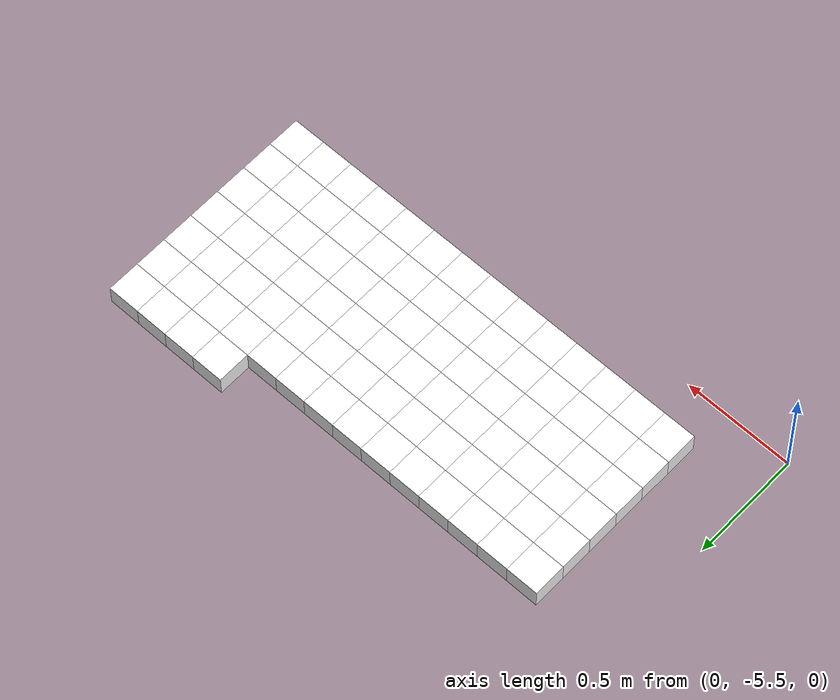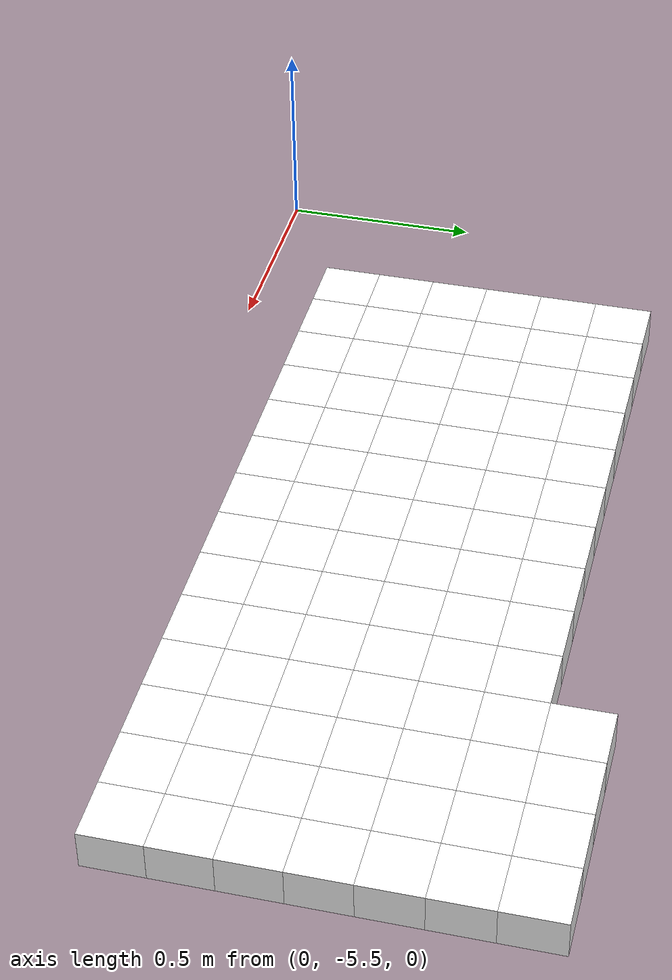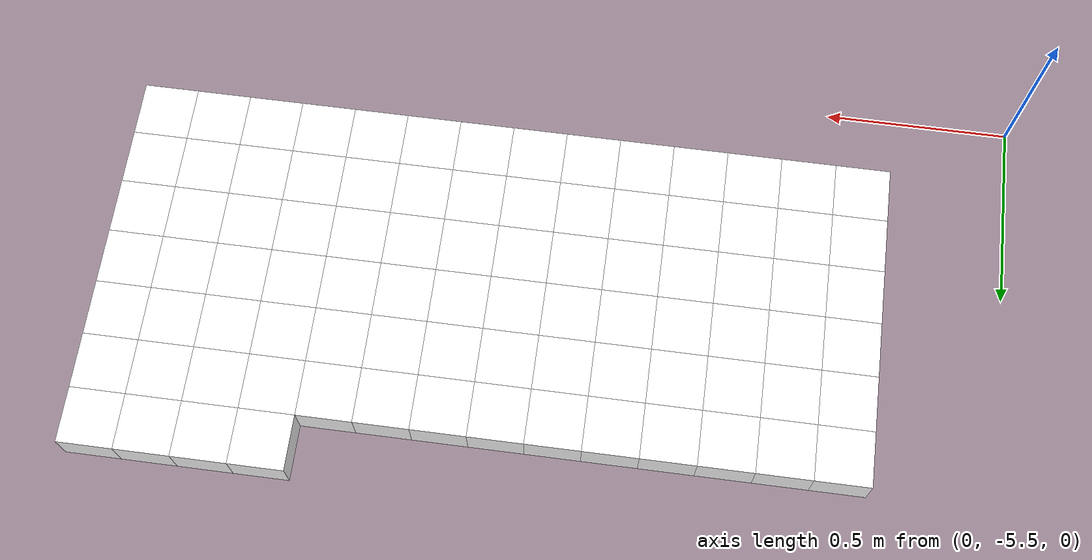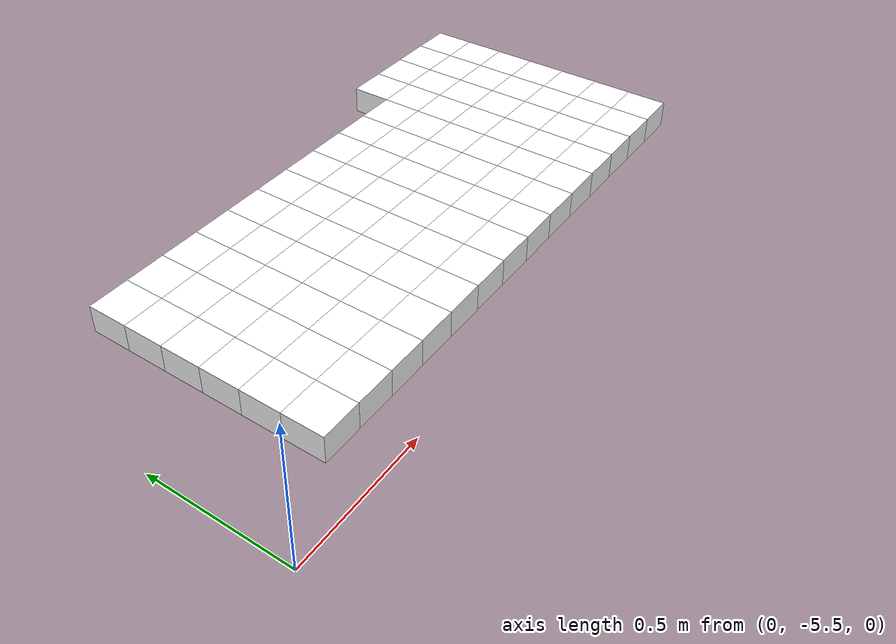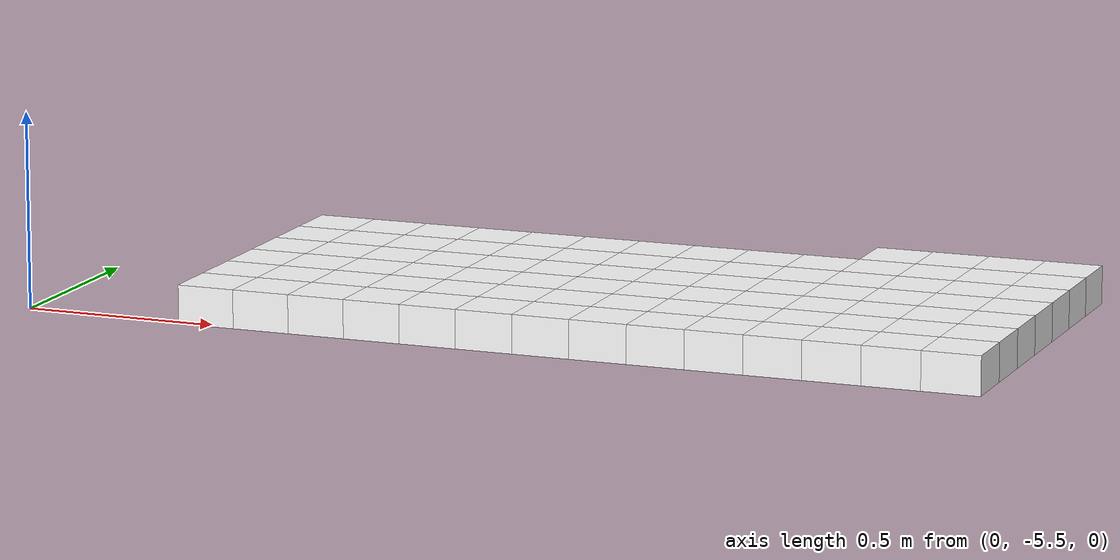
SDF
<sdf version="1.7">
 <world name="default">
  <include><uri>model://sun</uri></include>
  <model name="static_environment">
   <static>true</static>
   <link name="region_914">
    <pose>0.3995461905376687 -4.500213532733327 0.0 0.0 0.0 4.7123</pose>
    <collision name="region_914_collision">
     <geometry><box><size>0.15 0.15 0.1</size></box></geometry>
     <surface><friction><ode><mu>1.0</mu><mu2>1.0</mu2></ode></friction></surface>
    </collision>
    <visual name="region_914_visual">
     <geometry><box><size>0.15 0.15 0.1</size></box></geometry>
     <material><ambient>1.0 1.0 1.0 1.0</ambient><diffuse>1.0 1.0 1.0 1.0</diffuse></material>
    </visual>
   </link>
   <link name="region_915">
    <pose>0.3995328434799825 -4.650213532139515 0.0 0.0 0.0 4.7123</pose>
    <collision name="region_915_collision">
     <geometry><box><size>0.15 0.15 0.1</size></box></geometry>
     <surface><friction><ode><mu>1.0</mu><mu2>1.0</mu2></ode></friction></surface>
    </collision>
    <visual name="region_915_visual">
     <geometry><box><size>0.15 0.15 0.1</size></box></geometry>
     <material><ambient>1.0 1.0 1.0 1.0</ambient><diffuse>1.0 1.0 1.0 1.0</diffuse></material>
    </visual>
   </link>
   <link name="region_916">
    <pose>0.3995194964222968 -4.800213531545702 0.0 0.0 0.0 4.7123</pose>
    <collision name="region_916_collision">
     <geometry><box><size>0.15 0.15 0.1</size></box></geometry>
     <surface><friction><ode><mu>1.0</mu><mu2>1.0</mu2></ode></friction></surface>
    </collision>
    <visual name="region_916_visual">
     <geometry><box><size>0.15 0.15 0.1</size></box></geometry>
     <material><ambient>1.0 1.0 1.0 1.0</ambient><diffuse>1.0 1.0 1.0 1.0</diffuse></material>
    </visual>
   </link>
   <link name="region_917">
    <pose>0.39950614936461104 -4.950213530951889 0.0 0.0 0.0 4.7123</pose>
    <collision name="region_917_collision">
     <geometry><box><size>0.15 0.15 0.1</size></box></geometry>
     <surface><friction><ode><mu>1.0</mu><mu2>1.0</mu2></ode></friction></surface>
    </collision>
    <visual name="region_917_visual">
     <geometry><box><size>0.15 0.15 0.1</size></box></geometry>
     <material><ambient>1.0 1.0 1.0 1.0</ambient><diffuse>1.0 1.0 1.0 1.0</diffuse></material>
    </visual>
   </link>
   <link name="region_918">
    <pose>0.3994928023069253 -5.100213530358077 0.0 0.0 0.0 4.7123</pose>
    <collision name="region_918_collision">
     <geometry><box><size>0.15 0.15 0.1</size></box></geometry>
     <surface><friction><ode><mu>1.0</mu><mu2>1.0</mu2></ode></friction></surface>
    </collision>
    <visual name="region_918_visual">
     <geometry><box><size>0.15 0.15 0.1</size></box></geometry>
     <material><ambient>1.0 1.0 1.0 1.0</ambient><diffuse>1.0 1.0 1.0 1.0</diffuse></material>
    </visual>
   </link>
   <link name="region_919">
    <pose>0.3994794552492391 -5.250213529764263 0.0 0.0 0.0 4.7123</pose>
    <collision name="region_919_collision">
     <geometry><box><size>0.15 0.15 0.1</size></box></geometry>
     <surface><friction><ode><mu>1.0</mu><mu2>1.0</mu2></ode></friction></surface>
    </collision>
    <visual name="region_919_visual">
     <geometry><box><size>0.15 0.15 0.1</size></box></geometry>
     <material><ambient>1.0 1.0 1.0 1.0</ambient><diffuse>1.0 1.0 1.0 1.0</diffuse></material>
    </visual>
   </link>
   <link name="region_924">
    <pose>0.5495461899438556 -4.500226879791014 0.0 0.0 0.0 4.7123</pose>
    <collision name="region_924_collision">
     <geometry><box><size>0.15 0.15 0.1</size></box></geometry>
     <surface><friction><ode><mu>1.0</mu><mu2>1.0</mu2></ode></friction></surface>
    </collision>
    <visual name="region_924_visual">
     <geometry><box><size>0.15 0.15 0.1</size></box></geometry>
     <material><ambient>1.0 1.0 1.0 1.0</ambient><diffuse>1.0 1.0 1.0 1.0</diffuse></material>
    </visual>
   </link>
   <link name="region_925">
    <pose>0.5495328428861694 -4.6502268791972 0.0 0.0 0.0 4.7123</pose>
    <collision name="region_925_collision">
     <geometry><box><size>0.15 0.15 0.1</size></box></geometry>
     <surface><friction><ode><mu>1.0</mu><mu2>1.0</mu2></ode></friction></surface>
    </collision>
    <visual name="region_925_visual">
     <geometry><box><size>0.15 0.15 0.1</size></box></geometry>
     <material><ambient>1.0 1.0 1.0 1.0</ambient><diffuse>1.0 1.0 1.0 1.0</diffuse></material>
    </visual>
   </link>
   <link name="region_926">
    <pose>0.5495194958284837 -4.800226878603388 0.0 0.0 0.0 4.7123</pose>
    <collision name="region_926_collision">
     <geometry><box><size>0.15 0.15 0.1</size></box></geometry>
     <surface><friction><ode><mu>1.0</mu><mu2>1.0</mu2></ode></friction></surface>
    </collision>
    <visual name="region_926_visual">
     <geometry><box><size>0.15 0.15 0.1</size></box></geometry>
     <material><ambient>1.0 1.0 1.0 1.0</ambient><diffuse>1.0 1.0 1.0 1.0</diffuse></material>
    </visual>
   </link>
   <link name="region_927">
    <pose>0.549506148770798 -4.950226878009575 0.0 0.0 0.0 4.7123</pose>
    <collision name="region_927_collision">
     <geometry><box><size>0.15 0.15 0.1</size></box></geometry>
     <surface><friction><ode><mu>1.0</mu><mu2>1.0</mu2></ode></friction></surface>
    </collision>
    <visual name="region_927_visual">
     <geometry><box><size>0.15 0.15 0.1</size></box></geometry>
     <material><ambient>1.0 1.0 1.0 1.0</ambient><diffuse>1.0 1.0 1.0 1.0</diffuse></material>
    </visual>
   </link>
   <link name="region_928">
    <pose>0.5494928017131122 -5.100226877415762 0.0 0.0 0.0 4.7123</pose>
    <collision name="region_928_collision">
     <geometry><box><size>0.15 0.15 0.1</size></box></geometry>
     <surface><friction><ode><mu>1.0</mu><mu2>1.0</mu2></ode></friction></surface>
    </collision>
    <visual name="region_928_visual">
     <geometry><box><size>0.15 0.15 0.1</size></box></geometry>
     <material><ambient>1.0 1.0 1.0 1.0</ambient><diffuse>1.0 1.0 1.0 1.0</diffuse></material>
    </visual>
   </link>
   <link name="region_929">
    <pose>0.549479454655426 -5.25022687682195 0.0 0.0 0.0 4.7123</pose>
    <collision name="region_929_collision">
     <geometry><box><size>0.15 0.15 0.1</size></box></geometry>
     <surface><friction><ode><mu>1.0</mu><mu2>1.0</mu2></ode></friction></surface>
    </collision>
    <visual name="region_929_visual">
     <geometry><box><size>0.15 0.15 0.1</size></box></geometry>
     <material><ambient>1.0 1.0 1.0 1.0</ambient><diffuse>1.0 1.0 1.0 1.0</diffuse></material>
    </visual>
   </link>
   <link name="region_934">
    <pose>0.6995461893500425 -4.5002402268487 0.0 0.0 0.0 4.7123</pose>
    <collision name="region_934_collision">
     <geometry><box><size>0.15 0.15 0.1</size></box></geometry>
     <surface><friction><ode><mu>1.0</mu><mu2>1.0</mu2></ode></friction></surface>
    </collision>
    <visual name="region_934_visual">
     <geometry><box><size>0.15 0.15 0.1</size></box></geometry>
     <material><ambient>1.0 1.0 1.0 1.0</ambient><diffuse>1.0 1.0 1.0 1.0</diffuse></material>
    </visual>
   </link>
   <link name="region_935">
    <pose>0.6995328422923563 -4.650240226254886 0.0 0.0 0.0 4.7123</pose>
    <collision name="region_935_collision">
     <geometry><box><size>0.15 0.15 0.1</size></box></geometry>
     <surface><friction><ode><mu>1.0</mu><mu2>1.0</mu2></ode></friction></surface>
    </collision>
    <visual name="region_935_visual">
     <geometry><box><size>0.15 0.15 0.1</size></box></geometry>
     <material><ambient>1.0 1.0 1.0 1.0</ambient><diffuse>1.0 1.0 1.0 1.0</diffuse></material>
    </visual>
   </link>
   <link name="region_936">
    <pose>0.6995194952346706 -4.8002402256610734 0.0 0.0 0.0 4.7123</pose>
    <collision name="region_936_collision">
     <geometry><box><size>0.15 0.15 0.1</size></box></geometry>
     <surface><friction><ode><mu>1.0</mu><mu2>1.0</mu2></ode></friction></surface>
    </collision>
    <visual name="region_936_visual">
     <geometry><box><size>0.15 0.15 0.1</size></box></geometry>
     <material><ambient>1.0 1.0 1.0 1.0</ambient><diffuse>1.0 1.0 1.0 1.0</diffuse></material>
    </visual>
   </link>
   <link name="region_937">
    <pose>0.6995061481769849 -4.950240225067261 0.0 0.0 0.0 4.7123</pose>
    <collision name="region_937_collision">
     <geometry><box><size>0.15 0.15 0.1</size></box></geometry>
     <surface><friction><ode><mu>1.0</mu><mu2>1.0</mu2></ode></friction></surface>
    </collision>
    <visual name="region_937_visual">
     <geometry><box><size>0.15 0.15 0.1</size></box></geometry>
     <material><ambient>1.0 1.0 1.0 1.0</ambient><diffuse>1.0 1.0 1.0 1.0</diffuse></material>
    </visual>
   </link>
   <link name="region_938">
    <pose>0.6994928011192991 -5.100240224473448 0.0 0.0 0.0 4.7123</pose>
    <collision name="region_938_collision">
     <geometry><box><size>0.15 0.15 0.1</size></box></geometry>
     <surface><friction><ode><mu>1.0</mu><mu2>1.0</mu2></ode></friction></surface>
    </collision>
    <visual name="region_938_visual">
     <geometry><box><size>0.15 0.15 0.1</size></box></geometry>
     <material><ambient>1.0 1.0 1.0 1.0</ambient><diffuse>1.0 1.0 1.0 1.0</diffuse></material>
    </visual>
   </link>
   <link name="region_939">
    <pose>0.6994794540616129 -5.2502402238796355 0.0 0.0 0.0 4.7123</pose>
    <collision name="region_939_collision">
     <geometry><box><size>0.15 0.15 0.1</size></box></geometry>
     <surface><friction><ode><mu>1.0</mu><mu2>1.0</mu2></ode></friction></surface>
    </collision>
    <visual name="region_939_visual">
     <geometry><box><size>0.15 0.15 0.1</size></box></geometry>
     <material><ambient>1.0 1.0 1.0 1.0</ambient><diffuse>1.0 1.0 1.0 1.0</diffuse></material>
    </visual>
   </link>
   <link name="region_944">
    <pose>0.849546188756229 -4.500253573906385 0.0 0.0 0.0 4.7123</pose>
    <collision name="region_944_collision">
     <geometry><box><size>0.15 0.15 0.1</size></box></geometry>
     <surface><friction><ode><mu>1.0</mu><mu2>1.0</mu2></ode></friction></surface>
    </collision>
    <visual name="region_944_visual">
     <geometry><box><size>0.15 0.15 0.1</size></box></geometry>
     <material><ambient>1.0 1.0 1.0 1.0</ambient><diffuse>1.0 1.0 1.0 1.0</diffuse></material>
    </visual>
   </link>
   <link name="region_945">
    <pose>0.8495328416985428 -4.650253573312573 0.0 0.0 0.0 4.7123</pose>
    <collision name="region_945_collision">
     <geometry><box><size>0.15 0.15 0.1</size></box></geometry>
     <surface><friction><ode><mu>1.0</mu><mu2>1.0</mu2></ode></friction></surface>
    </collision>
    <visual name="region_945_visual">
     <geometry><box><size>0.15 0.15 0.1</size></box></geometry>
     <material><ambient>1.0 1.0 1.0 1.0</ambient><diffuse>1.0 1.0 1.0 1.0</diffuse></material>
    </visual>
   </link>
   <link name="region_946">
    <pose>0.8495194946408571 -4.800253572718759 0.0 0.0 0.0 4.7123</pose>
    <collision name="region_946_collision">
     <geometry><box><size>0.15 0.15 0.1</size></box></geometry>
     <surface><friction><ode><mu>1.0</mu><mu2>1.0</mu2></ode></friction></surface>
    </collision>
    <visual name="region_946_visual">
     <geometry><box><size>0.15 0.15 0.1</size></box></geometry>
     <material><ambient>1.0 1.0 1.0 1.0</ambient><diffuse>1.0 1.0 1.0 1.0</diffuse></material>
    </visual>
   </link>
   <link name="region_947">
    <pose>0.8495061475831713 -4.9502535721249465 0.0 0.0 0.0 4.7123</pose>
    <collision name="region_947_collision">
     <geometry><box><size>0.15 0.15 0.1</size></box></geometry>
     <surface><friction><ode><mu>1.0</mu><mu2>1.0</mu2></ode></friction></surface>
    </collision>
    <visual name="region_947_visual">
     <geometry><box><size>0.15 0.15 0.1</size></box></geometry>
     <material><ambient>1.0 1.0 1.0 1.0</ambient><diffuse>1.0 1.0 1.0 1.0</diffuse></material>
    </visual>
   </link>
   <link name="region_948">
    <pose>0.8494928005254856 -5.100253571531134 0.0 0.0 0.0 4.7123</pose>
    <collision name="region_948_collision">
     <geometry><box><size>0.15 0.15 0.1</size></box></geometry>
     <surface><friction><ode><mu>1.0</mu><mu2>1.0</mu2></ode></friction></surface>
    </collision>
    <visual name="region_948_visual">
     <geometry><box><size>0.15 0.15 0.1</size></box></geometry>
     <material><ambient>1.0 1.0 1.0 1.0</ambient><diffuse>1.0 1.0 1.0 1.0</diffuse></material>
    </visual>
   </link>
   <link name="region_949">
    <pose>0.8494794534677994 -5.250253570937321 0.0 0.0 0.0 4.7123</pose>
    <collision name="region_949_collision">
     <geometry><box><size>0.15 0.15 0.1</size></box></geometry>
     <surface><friction><ode><mu>1.0</mu><mu2>1.0</mu2></ode></friction></surface>
    </collision>
    <visual name="region_949_visual">
     <geometry><box><size>0.15 0.15 0.1</size></box></geometry>
     <material><ambient>1.0 1.0 1.0 1.0</ambient><diffuse>1.0 1.0 1.0 1.0</diffuse></material>
    </visual>
   </link>
   <link name="region_954">
    <pose>0.9995461881624159 -4.500266920964071 0.0 0.0 0.0 4.7123</pose>
    <collision name="region_954_collision">
     <geometry><box><size>0.15 0.15 0.1</size></box></geometry>
     <surface><friction><ode><mu>1.0</mu><mu2>1.0</mu2></ode></friction></surface>
    </collision>
    <visual name="region_954_visual">
     <geometry><box><size>0.15 0.15 0.1</size></box></geometry>
     <material><ambient>1.0 1.0 1.0 1.0</ambient><diffuse>1.0 1.0 1.0 1.0</diffuse></material>
    </visual>
   </link>
   <link name="region_955">
    <pose>0.9995328411047297 -4.6502669203702585 0.0 0.0 0.0 4.7123</pose>
    <collision name="region_955_collision">
     <geometry><box><size>0.15 0.15 0.1</size></box></geometry>
     <surface><friction><ode><mu>1.0</mu><mu2>1.0</mu2></ode></friction></surface>
    </collision>
    <visual name="region_955_visual">
     <geometry><box><size>0.15 0.15 0.1</size></box></geometry>
     <material><ambient>1.0 1.0 1.0 1.0</ambient><diffuse>1.0 1.0 1.0 1.0</diffuse></material>
    </visual>
   </link>
   <link name="region_956">
    <pose>0.999519494047044 -4.800266919776446 0.0 0.0 0.0 4.7123</pose>
    <collision name="region_956_collision">
     <geometry><box><size>0.15 0.15 0.1</size></box></geometry>
     <surface><friction><ode><mu>1.0</mu><mu2>1.0</mu2></ode></friction></surface>
    </collision>
    <visual name="region_956_visual">
     <geometry><box><size>0.15 0.15 0.1</size></box></geometry>
     <material><ambient>1.0 1.0 1.0 1.0</ambient><diffuse>1.0 1.0 1.0 1.0</diffuse></material>
    </visual>
   </link>
   <link name="region_957">
    <pose>0.9995061469893582 -4.950266919182632 0.0 0.0 0.0 4.7123</pose>
    <collision name="region_957_collision">
     <geometry><box><size>0.15 0.15 0.1</size></box></geometry>
     <surface><friction><ode><mu>1.0</mu><mu2>1.0</mu2></ode></friction></surface>
    </collision>
    <visual name="region_957_visual">
     <geometry><box><size>0.15 0.15 0.1</size></box></geometry>
     <material><ambient>1.0 1.0 1.0 1.0</ambient><diffuse>1.0 1.0 1.0 1.0</diffuse></material>
    </visual>
   </link>
   <link name="region_958">
    <pose>0.9994927999316725 -5.10026691858882 0.0 0.0 0.0 4.7123</pose>
    <collision name="region_958_collision">
     <geometry><box><size>0.15 0.15 0.1</size></box></geometry>
     <surface><friction><ode><mu>1.0</mu><mu2>1.0</mu2></ode></friction></surface>
    </collision>
    <visual name="region_958_visual">
     <geometry><box><size>0.15 0.15 0.1</size></box></geometry>
     <material><ambient>1.0 1.0 1.0 1.0</ambient><diffuse>1.0 1.0 1.0 1.0</diffuse></material>
    </visual>
   </link>
   <link name="region_959">
    <pose>0.9994794528739863 -5.250266917995007 0.0 0.0 0.0 4.7123</pose>
    <collision name="region_959_collision">
     <geometry><box><size>0.15 0.15 0.1</size></box></geometry>
     <surface><friction><ode><mu>1.0</mu><mu2>1.0</mu2></ode></friction></surface>
    </collision>
    <visual name="region_959_visual">
     <geometry><box><size>0.15 0.15 0.1</size></box></geometry>
     <material><ambient>1.0 1.0 1.0 1.0</ambient><diffuse>1.0 1.0 1.0 1.0</diffuse></material>
    </visual>
   </link>
   <link name="region_964">
    <pose>1.1495461875686024 -4.500280268021757 0.0 0.0 0.0 4.7123</pose>
    <collision name="region_964_collision">
     <geometry><box><size>0.15 0.15 0.1</size></box></geometry>
     <surface><friction><ode><mu>1.0</mu><mu2>1.0</mu2></ode></friction></surface>
    </collision>
    <visual name="region_964_visual">
     <geometry><box><size>0.15 0.15 0.1</size></box></geometry>
     <material><ambient>1.0 1.0 1.0 1.0</ambient><diffuse>1.0 1.0 1.0 1.0</diffuse></material>
    </visual>
   </link>
   <link name="region_965">
    <pose>1.1495328405109162 -4.650280267427944 0.0 0.0 0.0 4.7123</pose>
    <collision name="region_965_collision">
     <geometry><box><size>0.15 0.15 0.1</size></box></geometry>
     <surface><friction><ode><mu>1.0</mu><mu2>1.0</mu2></ode></friction></surface>
    </collision>
    <visual name="region_965_visual">
     <geometry><box><size>0.15 0.15 0.1</size></box></geometry>
     <material><ambient>1.0 1.0 1.0 1.0</ambient><diffuse>1.0 1.0 1.0 1.0</diffuse></material>
    </visual>
   </link>
   <link name="region_966">
    <pose>1.1495194934532305 -4.800280266834132 0.0 0.0 0.0 4.7123</pose>
    <collision name="region_966_collision">
     <geometry><box><size>0.15 0.15 0.1</size></box></geometry>
     <surface><friction><ode><mu>1.0</mu><mu2>1.0</mu2></ode></friction></surface>
    </collision>
    <visual name="region_966_visual">
     <geometry><box><size>0.15 0.15 0.1</size></box></geometry>
     <material><ambient>1.0 1.0 1.0 1.0</ambient><diffuse>1.0 1.0 1.0 1.0</diffuse></material>
    </visual>
   </link>
   <link name="region_967">
    <pose>1.1495061463955447 -4.950280266240319 0.0 0.0 0.0 4.7123</pose>
    <collision name="region_967_collision">
     <geometry><box><size>0.15 0.15 0.1</size></box></geometry>
     <surface><friction><ode><mu>1.0</mu><mu2>1.0</mu2></ode></friction></surface>
    </collision>
    <visual name="region_967_visual">
     <geometry><box><size>0.15 0.15 0.1</size></box></geometry>
     <material><ambient>1.0 1.0 1.0 1.0</ambient><diffuse>1.0 1.0 1.0 1.0</diffuse></material>
    </visual>
   </link>
   <link name="region_968">
    <pose>1.149492799337859 -5.100280265646505 0.0 0.0 0.0 4.7123</pose>
    <collision name="region_968_collision">
     <geometry><box><size>0.15 0.15 0.1</size></box></geometry>
     <surface><friction><ode><mu>1.0</mu><mu2>1.0</mu2></ode></friction></surface>
    </collision>
    <visual name="region_968_visual">
     <geometry><box><size>0.15 0.15 0.1</size></box></geometry>
     <material><ambient>1.0 1.0 1.0 1.0</ambient><diffuse>1.0 1.0 1.0 1.0</diffuse></material>
    </visual>
   </link>
   <link name="region_969">
    <pose>1.1494794522801728 -5.250280265052693 0.0 0.0 0.0 4.7123</pose>
    <collision name="region_969_collision">
     <geometry><box><size>0.15 0.15 0.1</size></box></geometry>
     <surface><friction><ode><mu>1.0</mu><mu2>1.0</mu2></ode></friction></surface>
    </collision>
    <visual name="region_969_visual">
     <geometry><box><size>0.15 0.15 0.1</size></box></geometry>
     <material><ambient>1.0 1.0 1.0 1.0</ambient><diffuse>1.0 1.0 1.0 1.0</diffuse></material>
    </visual>
   </link>
   <link name="region_974">
    <pose>1.2995461869747893 -4.500293615079443 0.0 0.0 0.0 4.7123</pose>
    <collision name="region_974_collision">
     <geometry><box><size>0.15 0.15 0.1</size></box></geometry>
     <surface><friction><ode><mu>1.0</mu><mu2>1.0</mu2></ode></friction></surface>
    </collision>
    <visual name="region_974_visual">
     <geometry><box><size>0.15 0.15 0.1</size></box></geometry>
     <material><ambient>1.0 1.0 1.0 1.0</ambient><diffuse>1.0 1.0 1.0 1.0</diffuse></material>
    </visual>
   </link>
   <link name="region_975">
    <pose>1.299532839917103 -4.65029361448563 0.0 0.0 0.0 4.7123</pose>
    <collision name="region_975_collision">
     <geometry><box><size>0.15 0.15 0.1</size></box></geometry>
     <surface><friction><ode><mu>1.0</mu><mu2>1.0</mu2></ode></friction></surface>
    </collision>
    <visual name="region_975_visual">
     <geometry><box><size>0.15 0.15 0.1</size></box></geometry>
     <material><ambient>1.0 1.0 1.0 1.0</ambient><diffuse>1.0 1.0 1.0 1.0</diffuse></material>
    </visual>
   </link>
   <link name="region_976">
    <pose>1.2995194928594174 -4.800293613891817 0.0 0.0 0.0 4.7123</pose>
    <collision name="region_976_collision">
     <geometry><box><size>0.15 0.15 0.1</size></box></geometry>
     <surface><friction><ode><mu>1.0</mu><mu2>1.0</mu2></ode></friction></surface>
    </collision>
    <visual name="region_976_visual">
     <geometry><box><size>0.15 0.15 0.1</size></box></geometry>
     <material><ambient>1.0 1.0 1.0 1.0</ambient><diffuse>1.0 1.0 1.0 1.0</diffuse></material>
    </visual>
   </link>
   <link name="region_977">
    <pose>1.2995061458017316 -4.950293613298005 0.0 0.0 0.0 4.7123</pose>
    <collision name="region_977_collision">
     <geometry><box><size>0.15 0.15 0.1</size></box></geometry>
     <surface><friction><ode><mu>1.0</mu><mu2>1.0</mu2></ode></friction></surface>
    </collision>
    <visual name="region_977_visual">
     <geometry><box><size>0.15 0.15 0.1</size></box></geometry>
     <material><ambient>1.0 1.0 1.0 1.0</ambient><diffuse>1.0 1.0 1.0 1.0</diffuse></material>
    </visual>
   </link>
   <link name="region_978">
    <pose>1.2994927987440459 -5.100293612704191 0.0 0.0 0.0 4.7123</pose>
    <collision name="region_978_collision">
     <geometry><box><size>0.15 0.15 0.1</size></box></geometry>
     <surface><friction><ode><mu>1.0</mu><mu2>1.0</mu2></ode></friction></surface>
    </collision>
    <visual name="region_978_visual">
     <geometry><box><size>0.15 0.15 0.1</size></box></geometry>
     <material><ambient>1.0 1.0 1.0 1.0</ambient><diffuse>1.0 1.0 1.0 1.0</diffuse></material>
    </visual>
   </link>
   <link name="region_979">
    <pose>1.2994794516863597 -5.2502936121103785 0.0 0.0 0.0 4.7123</pose>
    <collision name="region_979_collision">
     <geometry><box><size>0.15 0.15 0.1</size></box></geometry>
     <surface><friction><ode><mu>1.0</mu><mu2>1.0</mu2></ode></friction></surface>
    </collision>
    <visual name="region_979_visual">
     <geometry><box><size>0.15 0.15 0.1</size></box></geometry>
     <material><ambient>1.0 1.0 1.0 1.0</ambient><diffuse>1.0 1.0 1.0 1.0</diffuse></material>
    </visual>
   </link>
   <link name="region_984">
    <pose>1.4495461863809762 -4.500306962137128 0.0 0.0 0.0 4.7123</pose>
    <collision name="region_984_collision">
     <geometry><box><size>0.15 0.15 0.1</size></box></geometry>
     <surface><friction><ode><mu>1.0</mu><mu2>1.0</mu2></ode></friction></surface>
    </collision>
    <visual name="region_984_visual">
     <geometry><box><size>0.15 0.15 0.1</size></box></geometry>
     <material><ambient>1.0 1.0 1.0 1.0</ambient><diffuse>1.0 1.0 1.0 1.0</diffuse></material>
    </visual>
   </link>
   <link name="region_985">
    <pose>1.44953283932329 -4.650306961543316 0.0 0.0 0.0 4.7123</pose>
    <collision name="region_985_collision">
     <geometry><box><size>0.15 0.15 0.1</size></box></geometry>
     <surface><friction><ode><mu>1.0</mu><mu2>1.0</mu2></ode></friction></surface>
    </collision>
    <visual name="region_985_visual">
     <geometry><box><size>0.15 0.15 0.1</size></box></geometry>
     <material><ambient>1.0 1.0 1.0 1.0</ambient><diffuse>1.0 1.0 1.0 1.0</diffuse></material>
    </visual>
   </link>
   <link name="region_986">
    <pose>1.4495194922656043 -4.800306960949503 0.0 0.0 0.0 4.7123</pose>
    <collision name="region_986_collision">
     <geometry><box><size>0.15 0.15 0.1</size></box></geometry>
     <surface><friction><ode><mu>1.0</mu><mu2>1.0</mu2></ode></friction></surface>
    </collision>
    <visual name="region_986_visual">
     <geometry><box><size>0.15 0.15 0.1</size></box></geometry>
     <material><ambient>1.0 1.0 1.0 1.0</ambient><diffuse>1.0 1.0 1.0 1.0</diffuse></material>
    </visual>
   </link>
   <link name="region_987">
    <pose>1.4495061452079185 -4.95030696035569 0.0 0.0 0.0 4.7123</pose>
    <collision name="region_987_collision">
     <geometry><box><size>0.15 0.15 0.1</size></box></geometry>
     <surface><friction><ode><mu>1.0</mu><mu2>1.0</mu2></ode></friction></surface>
    </collision>
    <visual name="region_987_visual">
     <geometry><box><size>0.15 0.15 0.1</size></box></geometry>
     <material><ambient>1.0 1.0 1.0 1.0</ambient><diffuse>1.0 1.0 1.0 1.0</diffuse></material>
    </visual>
   </link>
   <link name="region_988">
    <pose>1.4494927981502328 -5.100306959761878 0.0 0.0 0.0 4.7123</pose>
    <collision name="region_988_collision">
     <geometry><box><size>0.15 0.15 0.1</size></box></geometry>
     <surface><friction><ode><mu>1.0</mu><mu2>1.0</mu2></ode></friction></surface>
    </collision>
    <visual name="region_988_visual">
     <geometry><box><size>0.15 0.15 0.1</size></box></geometry>
     <material><ambient>1.0 1.0 1.0 1.0</ambient><diffuse>1.0 1.0 1.0 1.0</diffuse></material>
    </visual>
   </link>
   <link name="region_989">
    <pose>1.4494794510925466 -5.250306959168064 0.0 0.0 0.0 4.7123</pose>
    <collision name="region_989_collision">
     <geometry><box><size>0.15 0.15 0.1</size></box></geometry>
     <surface><friction><ode><mu>1.0</mu><mu2>1.0</mu2></ode></friction></surface>
    </collision>
    <visual name="region_989_visual">
     <geometry><box><size>0.15 0.15 0.1</size></box></geometry>
     <material><ambient>1.0 1.0 1.0 1.0</ambient><diffuse>1.0 1.0 1.0 1.0</diffuse></material>
    </visual>
   </link>
   <link name="region_994">
    <pose>1.5995461857871627 -4.500320309194815 0.0 0.0 0.0 4.7123</pose>
    <collision name="region_994_collision">
     <geometry><box><size>0.15 0.15 0.1</size></box></geometry>
     <surface><friction><ode><mu>1.0</mu><mu2>1.0</mu2></ode></friction></surface>
    </collision>
    <visual name="region_994_visual">
     <geometry><box><size>0.15 0.15 0.1</size></box></geometry>
     <material><ambient>1.0 1.0 1.0 1.0</ambient><diffuse>1.0 1.0 1.0 1.0</diffuse></material>
    </visual>
   </link>
   <link name="region_995">
    <pose>1.5995328387294765 -4.650320308601001 0.0 0.0 0.0 4.7123</pose>
    <collision name="region_995_collision">
     <geometry><box><size>0.15 0.15 0.1</size></box></geometry>
     <surface><friction><ode><mu>1.0</mu><mu2>1.0</mu2></ode></friction></surface>
    </collision>
    <visual name="region_995_visual">
     <geometry><box><size>0.15 0.15 0.1</size></box></geometry>
     <material><ambient>1.0 1.0 1.0 1.0</ambient><diffuse>1.0 1.0 1.0 1.0</diffuse></material>
    </visual>
   </link>
   <link name="region_996">
    <pose>1.5995194916717907 -4.800320308007189 0.0 0.0 0.0 4.7123</pose>
    <collision name="region_996_collision">
     <geometry><box><size>0.15 0.15 0.1</size></box></geometry>
     <surface><friction><ode><mu>1.0</mu><mu2>1.0</mu2></ode></friction></surface>
    </collision>
    <visual name="region_996_visual">
     <geometry><box><size>0.15 0.15 0.1</size></box></geometry>
     <material><ambient>1.0 1.0 1.0 1.0</ambient><diffuse>1.0 1.0 1.0 1.0</diffuse></material>
    </visual>
   </link>
   <link name="region_997">
    <pose>1.599506144614105 -4.950320307413376 0.0 0.0 0.0 4.7123</pose>
    <collision name="region_997_collision">
     <geometry><box><size>0.15 0.15 0.1</size></box></geometry>
     <surface><friction><ode><mu>1.0</mu><mu2>1.0</mu2></ode></friction></surface>
    </collision>
    <visual name="region_997_visual">
     <geometry><box><size>0.15 0.15 0.1</size></box></geometry>
     <material><ambient>1.0 1.0 1.0 1.0</ambient><diffuse>1.0 1.0 1.0 1.0</diffuse></material>
    </visual>
   </link>
   <link name="region_998">
    <pose>1.5994927975564193 -5.1003203068195635 0.0 0.0 0.0 4.7123</pose>
    <collision name="region_998_collision">
     <geometry><box><size>0.15 0.15 0.1</size></box></geometry>
     <surface><friction><ode><mu>1.0</mu><mu2>1.0</mu2></ode></friction></surface>
    </collision>
    <visual name="region_998_visual">
     <geometry><box><size>0.15 0.15 0.1</size></box></geometry>
     <material><ambient>1.0 1.0 1.0 1.0</ambient><diffuse>1.0 1.0 1.0 1.0</diffuse></material>
    </visual>
   </link>
   <link name="region_999">
    <pose>1.599479450498733 -5.250320306225751 0.0 0.0 0.0 4.7123</pose>
    <collision name="region_999_collision">
     <geometry><box><size>0.15 0.15 0.1</size></box></geometry>
     <surface><friction><ode><mu>1.0</mu><mu2>1.0</mu2></ode></friction></surface>
    </collision>
    <visual name="region_999_visual">
     <geometry><box><size>0.15 0.15 0.1</size></box></geometry>
     <material><ambient>1.0 1.0 1.0 1.0</ambient><diffuse>1.0 1.0 1.0 1.0</diffuse></material>
    </visual>
   </link>
   <link name="region_1004">
    <pose>1.7495461851933496 -4.500333656252501 0.0 0.0 0.0 4.7123</pose>
    <collision name="region_1004_collision">
     <geometry><box><size>0.15 0.15 0.1</size></box></geometry>
     <surface><friction><ode><mu>1.0</mu><mu2>1.0</mu2></ode></friction></surface>
    </collision>
    <visual name="region_1004_visual">
     <geometry><box><size>0.15 0.15 0.1</size></box></geometry>
     <material><ambient>1.0 1.0 1.0 1.0</ambient><diffuse>1.0 1.0 1.0 1.0</diffuse></material>
    </visual>
   </link>
   <link name="region_1005">
    <pose>1.7495328381356634 -4.650333655658688 0.0 0.0 0.0 4.7123</pose>
    <collision name="region_1005_collision">
     <geometry><box><size>0.15 0.15 0.1</size></box></geometry>
     <surface><friction><ode><mu>1.0</mu><mu2>1.0</mu2></ode></friction></surface>
    </collision>
    <visual name="region_1005_visual">
     <geometry><box><size>0.15 0.15 0.1</size></box></geometry>
     <material><ambient>1.0 1.0 1.0 1.0</ambient><diffuse>1.0 1.0 1.0 1.0</diffuse></material>
    </visual>
   </link>
   <link name="region_1006">
    <pose>1.7495194910779777 -4.8003336550648745 0.0 0.0 0.0 4.7123</pose>
    <collision name="region_1006_collision">
     <geometry><box><size>0.15 0.15 0.1</size></box></geometry>
     <surface><friction><ode><mu>1.0</mu><mu2>1.0</mu2></ode></friction></surface>
    </collision>
    <visual name="region_1006_visual">
     <geometry><box><size>0.15 0.15 0.1</size></box></geometry>
     <material><ambient>1.0 1.0 1.0 1.0</ambient><diffuse>1.0 1.0 1.0 1.0</diffuse></material>
    </visual>
   </link>
   <link name="region_1007">
    <pose>1.749506144020292 -4.950333654471062 0.0 0.0 0.0 4.7123</pose>
    <collision name="region_1007_collision">
     <geometry><box><size>0.15 0.15 0.1</size></box></geometry>
     <surface><friction><ode><mu>1.0</mu><mu2>1.0</mu2></ode></friction></surface>
    </collision>
    <visual name="region_1007_visual">
     <geometry><box><size>0.15 0.15 0.1</size></box></geometry>
     <material><ambient>1.0 1.0 1.0 1.0</ambient><diffuse>1.0 1.0 1.0 1.0</diffuse></material>
    </visual>
   </link>
   <link name="region_1008">
    <pose>1.7494927969626062 -5.100333653877249 0.0 0.0 0.0 4.7123</pose>
    <collision name="region_1008_collision">
     <geometry><box><size>0.15 0.15 0.1</size></box></geometry>
     <surface><friction><ode><mu>1.0</mu><mu2>1.0</mu2></ode></friction></surface>
    </collision>
    <visual name="region_1008_visual">
     <geometry><box><size>0.15 0.15 0.1</size></box></geometry>
     <material><ambient>1.0 1.0 1.0 1.0</ambient><diffuse>1.0 1.0 1.0 1.0</diffuse></material>
    </visual>
   </link>
   <link name="region_1009">
    <pose>1.74947944990492 -5.250333653283437 0.0 0.0 0.0 4.7123</pose>
    <collision name="region_1009_collision">
     <geometry><box><size>0.15 0.15 0.1</size></box></geometry>
     <surface><friction><ode><mu>1.0</mu><mu2>1.0</mu2></ode></friction></surface>
    </collision>
    <visual name="region_1009_visual">
     <geometry><box><size>0.15 0.15 0.1</size></box></geometry>
     <material><ambient>1.0 1.0 1.0 1.0</ambient><diffuse>1.0 1.0 1.0 1.0</diffuse></material>
    </visual>
   </link>
   <link name="region_1013">
    <pose>1.8995595316572218 -4.350347003903999 0.0 0.0 0.0 4.7123</pose>
    <collision name="region_1013_collision">
     <geometry><box><size>0.15 0.15 0.1</size></box></geometry>
     <surface><friction><ode><mu>1.0</mu><mu2>1.0</mu2></ode></friction></surface>
    </collision>
    <visual name="region_1013_visual">
     <geometry><box><size>0.15 0.15 0.1</size></box></geometry>
     <material><ambient>1.0 1.0 1.0 1.0</ambient><diffuse>1.0 1.0 1.0 1.0</diffuse></material>
    </visual>
   </link>
   <link name="region_1014">
    <pose>1.899546184599536 -4.5003470033101864 0.0 0.0 0.0 4.7123</pose>
    <collision name="region_1014_collision">
     <geometry><box><size>0.15 0.15 0.1</size></box></geometry>
     <surface><friction><ode><mu>1.0</mu><mu2>1.0</mu2></ode></friction></surface>
    </collision>
    <visual name="region_1014_visual">
     <geometry><box><size>0.15 0.15 0.1</size></box></geometry>
     <material><ambient>1.0 1.0 1.0 1.0</ambient><diffuse>1.0 1.0 1.0 1.0</diffuse></material>
    </visual>
   </link>
   <link name="region_1015">
    <pose>1.8995328375418499 -4.650347002716374 0.0 0.0 0.0 4.7123</pose>
    <collision name="region_1015_collision">
     <geometry><box><size>0.15 0.15 0.1</size></box></geometry>
     <surface><friction><ode><mu>1.0</mu><mu2>1.0</mu2></ode></friction></surface>
    </collision>
    <visual name="region_1015_visual">
     <geometry><box><size>0.15 0.15 0.1</size></box></geometry>
     <material><ambient>1.0 1.0 1.0 1.0</ambient><diffuse>1.0 1.0 1.0 1.0</diffuse></material>
    </visual>
   </link>
   <link name="region_1016">
    <pose>1.8995194904841641 -4.800347002122561 0.0 0.0 0.0 4.7123</pose>
    <collision name="region_1016_collision">
     <geometry><box><size>0.15 0.15 0.1</size></box></geometry>
     <surface><friction><ode><mu>1.0</mu><mu2>1.0</mu2></ode></friction></surface>
    </collision>
    <visual name="region_1016_visual">
     <geometry><box><size>0.15 0.15 0.1</size></box></geometry>
     <material><ambient>1.0 1.0 1.0 1.0</ambient><diffuse>1.0 1.0 1.0 1.0</diffuse></material>
    </visual>
   </link>
   <link name="region_1017">
    <pose>1.8995061434264784 -4.950347001528748 0.0 0.0 0.0 4.7123</pose>
    <collision name="region_1017_collision">
     <geometry><box><size>0.15 0.15 0.1</size></box></geometry>
     <surface><friction><ode><mu>1.0</mu><mu2>1.0</mu2></ode></friction></surface>
    </collision>
    <visual name="region_1017_visual">
     <geometry><box><size>0.15 0.15 0.1</size></box></geometry>
     <material><ambient>1.0 1.0 1.0 1.0</ambient><diffuse>1.0 1.0 1.0 1.0</diffuse></material>
    </visual>
   </link>
   <link name="region_1018">
    <pose>1.8994927963687926 -5.100347000934935 0.0 0.0 0.0 4.7123</pose>
    <collision name="region_1018_collision">
     <geometry><box><size>0.15 0.15 0.1</size></box></geometry>
     <surface><friction><ode><mu>1.0</mu><mu2>1.0</mu2></ode></friction></surface>
    </collision>
    <visual name="region_1018_visual">
     <geometry><box><size>0.15 0.15 0.1</size></box></geometry>
     <material><ambient>1.0 1.0 1.0 1.0</ambient><diffuse>1.0 1.0 1.0 1.0</diffuse></material>
    </visual>
   </link>
   <link name="region_1019">
    <pose>1.8994794493111065 -5.250347000341122 0.0 0.0 0.0 4.7123</pose>
    <collision name="region_1019_collision">
     <geometry><box><size>0.15 0.15 0.1</size></box></geometry>
     <surface><friction><ode><mu>1.0</mu><mu2>1.0</mu2></ode></friction></surface>
    </collision>
    <visual name="region_1019_visual">
     <geometry><box><size>0.15 0.15 0.1</size></box></geometry>
     <material><ambient>1.0 1.0 1.0 1.0</ambient><diffuse>1.0 1.0 1.0 1.0</diffuse></material>
    </visual>
   </link>
   <link name="region_1023">
    <pose>2.0495595310634087 -4.350360350961685 0.0 0.0 0.0 4.7123</pose>
    <collision name="region_1023_collision">
     <geometry><box><size>0.15 0.15 0.1</size></box></geometry>
     <surface><friction><ode><mu>1.0</mu><mu2>1.0</mu2></ode></friction></surface>
    </collision>
    <visual name="region_1023_visual">
     <geometry><box><size>0.15 0.15 0.1</size></box></geometry>
     <material><ambient>1.0 1.0 1.0 1.0</ambient><diffuse>1.0 1.0 1.0 1.0</diffuse></material>
    </visual>
   </link>
   <link name="region_1024">
    <pose>2.049546184005723 -4.500360350367872 0.0 0.0 0.0 4.7123</pose>
    <collision name="region_1024_collision">
     <geometry><box><size>0.15 0.15 0.1</size></box></geometry>
     <surface><friction><ode><mu>1.0</mu><mu2>1.0</mu2></ode></friction></surface>
    </collision>
    <visual name="region_1024_visual">
     <geometry><box><size>0.15 0.15 0.1</size></box></geometry>
     <material><ambient>1.0 1.0 1.0 1.0</ambient><diffuse>1.0 1.0 1.0 1.0</diffuse></material>
    </visual>
   </link>
   <link name="region_1025">
    <pose>2.0495328369480372 -4.6503603497740595 0.0 0.0 0.0 4.7123</pose>
    <collision name="region_1025_collision">
     <geometry><box><size>0.15 0.15 0.1</size></box></geometry>
     <surface><friction><ode><mu>1.0</mu><mu2>1.0</mu2></ode></friction></surface>
    </collision>
    <visual name="region_1025_visual">
     <geometry><box><size>0.15 0.15 0.1</size></box></geometry>
     <material><ambient>1.0 1.0 1.0 1.0</ambient><diffuse>1.0 1.0 1.0 1.0</diffuse></material>
    </visual>
   </link>
   <link name="region_1026">
    <pose>2.0495194898903515 -4.800360349180247 0.0 0.0 0.0 4.7123</pose>
    <collision name="region_1026_collision">
     <geometry><box><size>0.15 0.15 0.1</size></box></geometry>
     <surface><friction><ode><mu>1.0</mu><mu2>1.0</mu2></ode></friction></surface>
    </collision>
    <visual name="region_1026_visual">
     <geometry><box><size>0.15 0.15 0.1</size></box></geometry>
     <material><ambient>1.0 1.0 1.0 1.0</ambient><diffuse>1.0 1.0 1.0 1.0</diffuse></material>
    </visual>
   </link>
   <link name="region_1027">
    <pose>2.049506142832665 -4.950360348586433 0.0 0.0 0.0 4.7123</pose>
    <collision name="region_1027_collision">
     <geometry><box><size>0.15 0.15 0.1</size></box></geometry>
     <surface><friction><ode><mu>1.0</mu><mu2>1.0</mu2></ode></friction></surface>
    </collision>
    <visual name="region_1027_visual">
     <geometry><box><size>0.15 0.15 0.1</size></box></geometry>
     <material><ambient>1.0 1.0 1.0 1.0</ambient><diffuse>1.0 1.0 1.0 1.0</diffuse></material>
    </visual>
   </link>
   <link name="region_1028">
    <pose>2.049492795774979 -5.100360347992621 0.0 0.0 0.0 4.7123</pose>
    <collision name="region_1028_collision">
     <geometry><box><size>0.15 0.15 0.1</size></box></geometry>
     <surface><friction><ode><mu>1.0</mu><mu2>1.0</mu2></ode></friction></surface>
    </collision>
    <visual name="region_1028_visual">
     <geometry><box><size>0.15 0.15 0.1</size></box></geometry>
     <material><ambient>1.0 1.0 1.0 1.0</ambient><diffuse>1.0 1.0 1.0 1.0</diffuse></material>
    </visual>
   </link>
   <link name="region_1029">
    <pose>2.0494794487172934 -5.250360347398808 0.0 0.0 0.0 4.7123</pose>
    <collision name="region_1029_collision">
     <geometry><box><size>0.15 0.15 0.1</size></box></geometry>
     <surface><friction><ode><mu>1.0</mu><mu2>1.0</mu2></ode></friction></surface>
    </collision>
    <visual name="region_1029_visual">
     <geometry><box><size>0.15 0.15 0.1</size></box></geometry>
     <material><ambient>1.0 1.0 1.0 1.0</ambient><diffuse>1.0 1.0 1.0 1.0</diffuse></material>
    </visual>
   </link>
   <link name="region_1033">
    <pose>2.199559530469596 -4.350373698019371 0.0 0.0 0.0 4.7123</pose>
    <collision name="region_1033_collision">
     <geometry><box><size>0.15 0.15 0.1</size></box></geometry>
     <surface><friction><ode><mu>1.0</mu><mu2>1.0</mu2></ode></friction></surface>
    </collision>
    <visual name="region_1033_visual">
     <geometry><box><size>0.15 0.15 0.1</size></box></geometry>
     <material><ambient>1.0 1.0 1.0 1.0</ambient><diffuse>1.0 1.0 1.0 1.0</diffuse></material>
    </visual>
   </link>
   <link name="region_1034">
    <pose>2.1995461834119103 -4.500373697425558 0.0 0.0 0.0 4.7123</pose>
    <collision name="region_1034_collision">
     <geometry><box><size>0.15 0.15 0.1</size></box></geometry>
     <surface><friction><ode><mu>1.0</mu><mu2>1.0</mu2></ode></friction></surface>
    </collision>
    <visual name="region_1034_visual">
     <geometry><box><size>0.15 0.15 0.1</size></box></geometry>
     <material><ambient>1.0 1.0 1.0 1.0</ambient><diffuse>1.0 1.0 1.0 1.0</diffuse></material>
    </visual>
   </link>
   <link name="region_1035">
    <pose>2.1995328363542246 -4.650373696831745 0.0 0.0 0.0 4.7123</pose>
    <collision name="region_1035_collision">
     <geometry><box><size>0.15 0.15 0.1</size></box></geometry>
     <surface><friction><ode><mu>1.0</mu><mu2>1.0</mu2></ode></friction></surface>
    </collision>
    <visual name="region_1035_visual">
     <geometry><box><size>0.15 0.15 0.1</size></box></geometry>
     <material><ambient>1.0 1.0 1.0 1.0</ambient><diffuse>1.0 1.0 1.0 1.0</diffuse></material>
    </visual>
   </link>
   <link name="region_1036">
    <pose>2.199519489296539 -4.800373696237933 0.0 0.0 0.0 4.7123</pose>
    <collision name="region_1036_collision">
     <geometry><box><size>0.15 0.15 0.1</size></box></geometry>
     <surface><friction><ode><mu>1.0</mu><mu2>1.0</mu2></ode></friction></surface>
    </collision>
    <visual name="region_1036_visual">
     <geometry><box><size>0.15 0.15 0.1</size></box></geometry>
     <material><ambient>1.0 1.0 1.0 1.0</ambient><diffuse>1.0 1.0 1.0 1.0</diffuse></material>
    </visual>
   </link>
   <link name="region_1037">
    <pose>2.199506142238852 -4.95037369564412 0.0 0.0 0.0 4.7123</pose>
    <collision name="region_1037_collision">
     <geometry><box><size>0.15 0.15 0.1</size></box></geometry>
     <surface><friction><ode><mu>1.0</mu><mu2>1.0</mu2></ode></friction></surface>
    </collision>
    <visual name="region_1037_visual">
     <geometry><box><size>0.15 0.15 0.1</size></box></geometry>
     <material><ambient>1.0 1.0 1.0 1.0</ambient><diffuse>1.0 1.0 1.0 1.0</diffuse></material>
    </visual>
   </link>
   <link name="region_1038">
    <pose>2.1994927951811665 -5.1003736950503065 0.0 0.0 0.0 4.7123</pose>
    <collision name="region_1038_collision">
     <geometry><box><size>0.15 0.15 0.1</size></box></geometry>
     <surface><friction><ode><mu>1.0</mu><mu2>1.0</mu2></ode></friction></surface>
    </collision>
    <visual name="region_1038_visual">
     <geometry><box><size>0.15 0.15 0.1</size></box></geometry>
     <material><ambient>1.0 1.0 1.0 1.0</ambient><diffuse>1.0 1.0 1.0 1.0</diffuse></material>
    </visual>
   </link>
   <link name="region_1039">
    <pose>2.1994794481234807 -5.250373694456494 0.0 0.0 0.0 4.7123</pose>
    <collision name="region_1039_collision">
     <geometry><box><size>0.15 0.15 0.1</size></box></geometry>
     <surface><friction><ode><mu>1.0</mu><mu2>1.0</mu2></ode></friction></surface>
    </collision>
    <visual name="region_1039_visual">
     <geometry><box><size>0.15 0.15 0.1</size></box></geometry>
     <material><ambient>1.0 1.0 1.0 1.0</ambient><diffuse>1.0 1.0 1.0 1.0</diffuse></material>
    </visual>
   </link>
   <link name="region_1043">
    <pose>2.3495595298757834 -4.350387045077057 0.0 0.0 0.0 4.7123</pose>
    <collision name="region_1043_collision">
     <geometry><box><size>0.15 0.15 0.1</size></box></geometry>
     <surface><friction><ode><mu>1.0</mu><mu2>1.0</mu2></ode></friction></surface>
    </collision>
    <visual name="region_1043_visual">
     <geometry><box><size>0.15 0.15 0.1</size></box></geometry>
     <material><ambient>1.0 1.0 1.0 1.0</ambient><diffuse>1.0 1.0 1.0 1.0</diffuse></material>
    </visual>
   </link>
   <link name="region_1044">
    <pose>2.3495461828180977 -4.500387044483244 0.0 0.0 0.0 4.7123</pose>
    <collision name="region_1044_collision">
     <geometry><box><size>0.15 0.15 0.1</size></box></geometry>
     <surface><friction><ode><mu>1.0</mu><mu2>1.0</mu2></ode></friction></surface>
    </collision>
    <visual name="region_1044_visual">
     <geometry><box><size>0.15 0.15 0.1</size></box></geometry>
     <material><ambient>1.0 1.0 1.0 1.0</ambient><diffuse>1.0 1.0 1.0 1.0</diffuse></material>
    </visual>
   </link>
   <link name="region_1045">
    <pose>2.349532835760412 -4.650387043889431 0.0 0.0 0.0 4.7123</pose>
    <collision name="region_1045_collision">
     <geometry><box><size>0.15 0.15 0.1</size></box></geometry>
     <surface><friction><ode><mu>1.0</mu><mu2>1.0</mu2></ode></friction></surface>
    </collision>
    <visual name="region_1045_visual">
     <geometry><box><size>0.15 0.15 0.1</size></box></geometry>
     <material><ambient>1.0 1.0 1.0 1.0</ambient><diffuse>1.0 1.0 1.0 1.0</diffuse></material>
    </visual>
   </link>
   <link name="region_1046">
    <pose>2.349519488702726 -4.800387043295618 0.0 0.0 0.0 4.7123</pose>
    <collision name="region_1046_collision">
     <geometry><box><size>0.15 0.15 0.1</size></box></geometry>
     <surface><friction><ode><mu>1.0</mu><mu2>1.0</mu2></ode></friction></surface>
    </collision>
    <visual name="region_1046_visual">
     <geometry><box><size>0.15 0.15 0.1</size></box></geometry>
     <material><ambient>1.0 1.0 1.0 1.0</ambient><diffuse>1.0 1.0 1.0 1.0</diffuse></material>
    </visual>
   </link>
   <link name="region_1047">
    <pose>2.3495061416450396 -4.950387042701806 0.0 0.0 0.0 4.7123</pose>
    <collision name="region_1047_collision">
     <geometry><box><size>0.15 0.15 0.1</size></box></geometry>
     <surface><friction><ode><mu>1.0</mu><mu2>1.0</mu2></ode></friction></surface>
    </collision>
    <visual name="region_1047_visual">
     <geometry><box><size>0.15 0.15 0.1</size></box></geometry>
     <material><ambient>1.0 1.0 1.0 1.0</ambient><diffuse>1.0 1.0 1.0 1.0</diffuse></material>
    </visual>
   </link>
   <link name="region_1048">
    <pose>2.349492794587354 -5.100387042107993 0.0 0.0 0.0 4.7123</pose>
    <collision name="region_1048_collision">
     <geometry><box><size>0.15 0.15 0.1</size></box></geometry>
     <surface><friction><ode><mu>1.0</mu><mu2>1.0</mu2></ode></friction></surface>
    </collision>
    <visual name="region_1048_visual">
     <geometry><box><size>0.15 0.15 0.1</size></box></geometry>
     <material><ambient>1.0 1.0 1.0 1.0</ambient><diffuse>1.0 1.0 1.0 1.0</diffuse></material>
    </visual>
   </link>
   <link name="region_1049">
    <pose>2.349479447529668 -5.25038704151418 0.0 0.0 0.0 4.7123</pose>
    <collision name="region_1049_collision">
     <geometry><box><size>0.15 0.15 0.1</size></box></geometry>
     <surface><friction><ode><mu>1.0</mu><mu2>1.0</mu2></ode></friction></surface>
    </collision>
    <visual name="region_1049_visual">
     <geometry><box><size>0.15 0.15 0.1</size></box></geometry>
     <material><ambient>1.0 1.0 1.0 1.0</ambient><diffuse>1.0 1.0 1.0 1.0</diffuse></material>
    </visual>
   </link>
  </model>
 </world>
</sdf>
